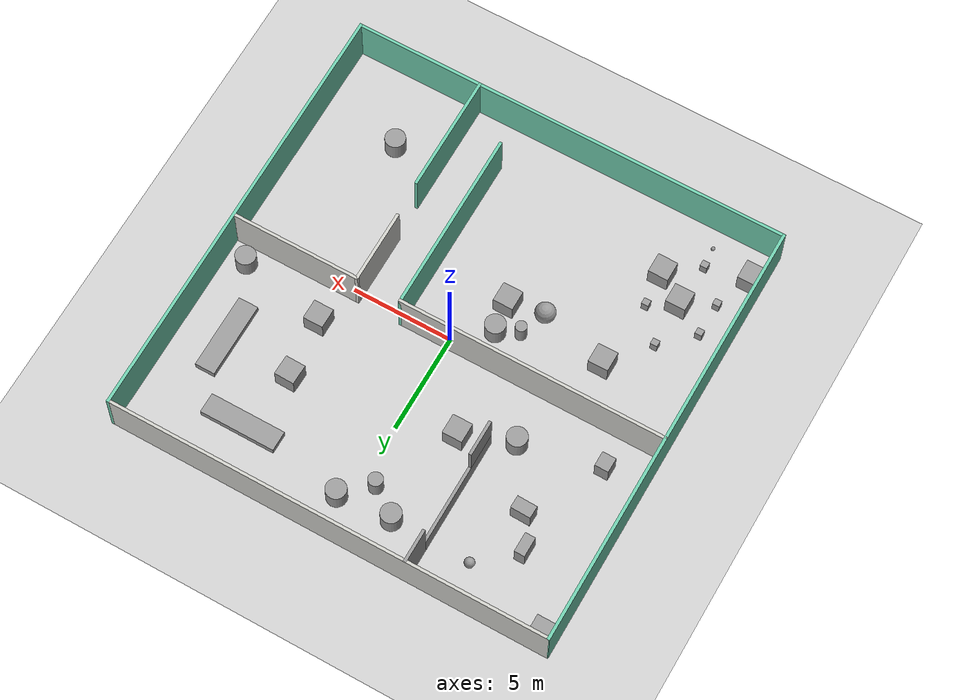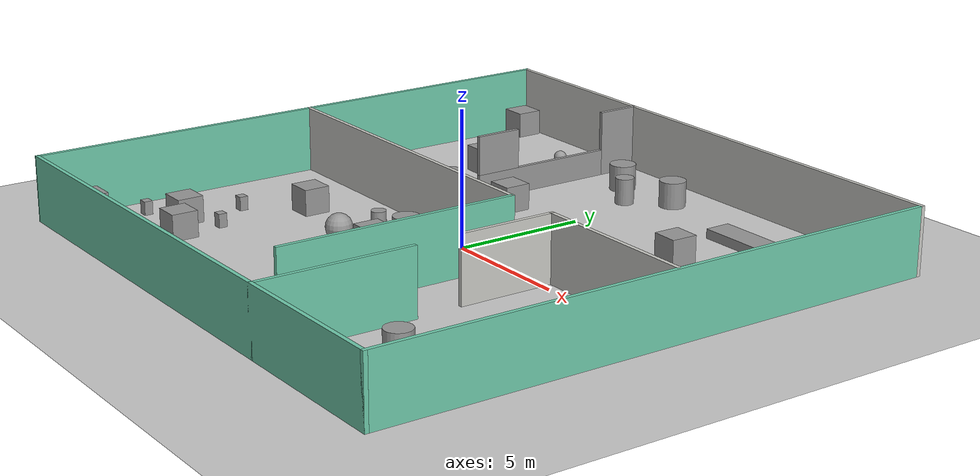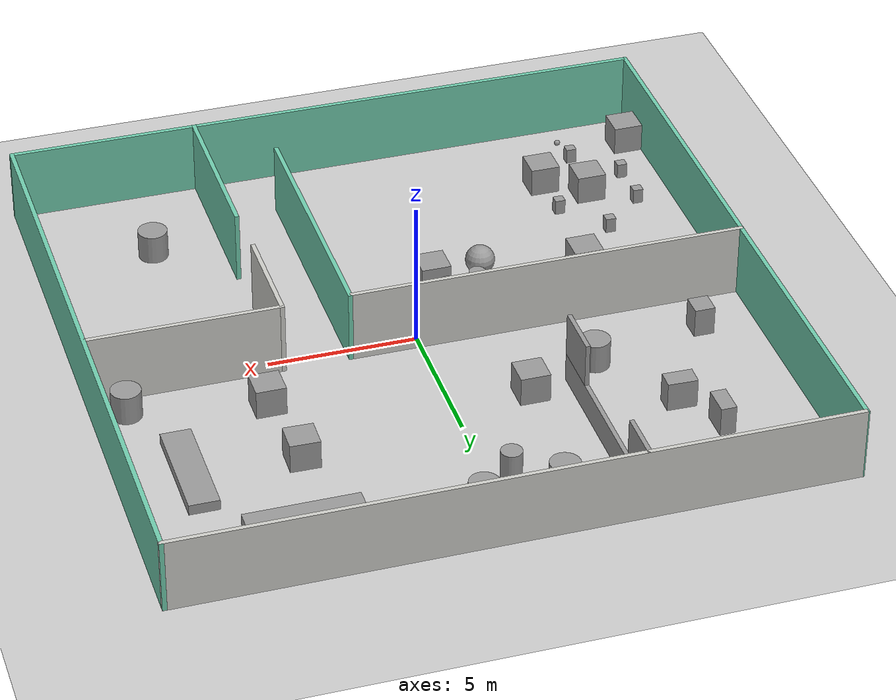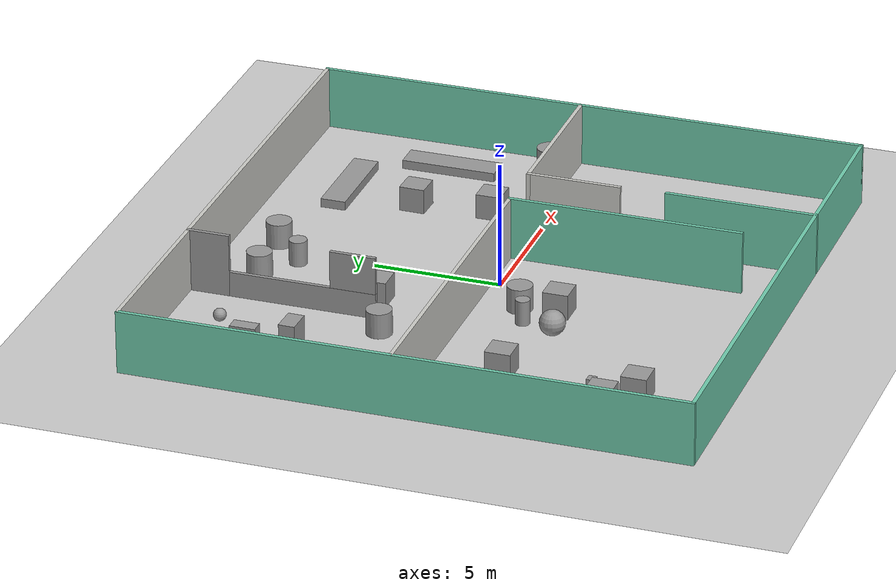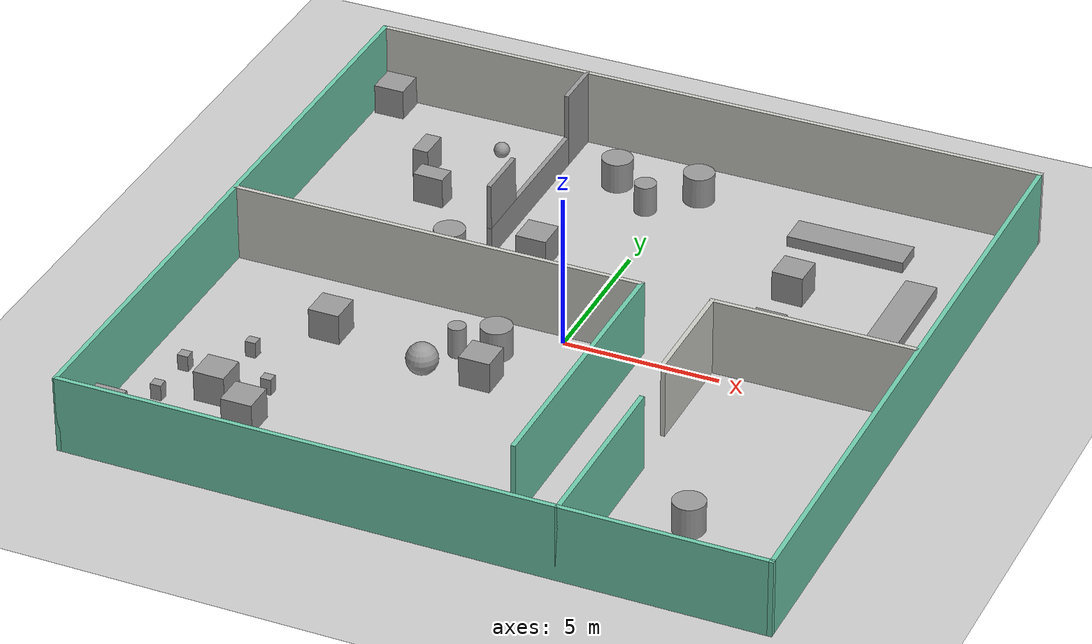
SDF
<sdf version="1.6">
 <world name="default">
  <light name="sun" type="directional">
   <pose>0 0 10 0 -0 0</pose>
   <diffuse>0.8 0.8 0.8 1</diffuse>
   <specular>0.2 0.2 0.2 1</specular>
   <attenuation>
    <range>1000</range>
    <constant>0.9</constant>
    <linear>0.01</linear>
    <quadratic>0.001</quadratic>
   </attenuation>
   <direction>-0.5 0.1 -0.9</direction>
  </light>
  <model name="ground_plane">
   <static>1</static>
   <link name="link">
    <collision name="collision">
     <geometry><plane><normal>0 0 1</normal><size>100 100</size></plane></geometry>
     <surface><friction><ode><mu>100</mu><mu2>50</mu2></ode></friction></surface>
    </collision>
    <visual name="visual">
     <cast_shadows>0</cast_shadows>
     <geometry><plane><normal>0 0 1</normal><size>100 100</size></plane></geometry>
     <material>
      <script><uri>file://media/materials/scripts/gazebo.material</uri><name>Gazebo/Grey</name></script>
     </material>
    </visual>
   </link>
  </model>
  <gravity>0 0 -9.8</gravity>
  <magnetic_field>6e-06 2.3e-05 -4.2e-05</magnetic_field>
  <atmosphere type="adiabatic"/>
  <physics name="default_physics" default="0" type="ode">
   <max_step_size>0.001</max_step_size>
   <real_time_factor>1</real_time_factor>
   <real_time_update_rate>1000</real_time_update_rate>
  </physics>
  <scene><ambient>0.4 0.4 0.4 1</ambient><background>0.7 0.7 0.7 1</background><shadows>1</shadows></scene>
  <spherical_coordinates>
   <surface_model>EARTH_WGS84</surface_model>
   <latitude_deg>0</latitude_deg>
   <longitude_deg>0</longitude_deg>
   <elevation>0</elevation>
   <heading_deg>0</heading_deg>
  </spherical_coordinates>
  <model name="my_ball">
   <link name="link_2">
    <inertial>
     <mass>1</mass>
     <inertia><ixx>0.1</ixx><ixy>0</ixy><ixz>0</ixz><iyy>0.1</iyy><iyz>0</iyz><izz>0.1</izz></inertia>
    </inertial>
    <visual name="visual">
     <geometry><sphere><radius>0.1</radius></sphere></geometry>
     <material>
      <lighting>1</lighting>
      <script><uri>file://media/materials/scripts/gazebo.material</uri><name>Gazebo/Grey</name></script>
      <shader type="pixel"><normal_map>__default__</normal_map></shader>
      <ambient>1 1 1 1</ambient>
      <diffuse>1 1 1 1</diffuse>
      <specular>1 1 1 1</specular>
      <emissive>1 1 1 1</emissive>
     </material>
    </visual>
    <collision name="collision">
     <geometry><sphere><radius>0.1</radius></sphere></geometry>
     <surface>
      <friction>
       <ode><mu>1</mu><mu2>1</mu2><fdir1>0 0 0</fdir1><slip1>0</slip1><slip2>0</slip2></ode>
       <torsional>
        <coefficient>1</coefficient>
        <patch_radius>0</patch_radius>
        <surface_radius>0</surface_radius>
        <use_patch_radius>1</use_patch_radius>
        <ode><slip>0</slip></ode>
       </torsional>
      </friction>
      <bounce><restitution_coefficient>0</restitution_coefficient><threshold>1e+06</threshold></bounce>
      <contact>
       <collide_without_contact>0</collide_without_contact>
       <collide_without_contact_bitmask>1</collide_without_contact_bitmask>
       <collide_bitmask>1</collide_bitmask>
       <ode>
        <soft_cfm>0</soft_cfm>
        <soft_erp>0.2</soft_erp>
        <kp>1e+13</kp>
        <kd>1</kd>
        <max_vel>0.01</max_vel>
        <min_depth>0</min_depth>
       </ode>
       <bullet>
        <split_impulse>1</split_impulse>
        <split_impulse_penetration_threshold>-0.01</split_impulse_penetration_threshold>
        <soft_cfm>0</soft_cfm>
        <soft_erp>0.2</soft_erp>
        <kp>1e+13</kp>
        <kd>1</kd>
       </bullet>
      </contact>
     </surface>
    </collision>
   </link>
   <static>0</static>
   <pose>-8.20078 -9.89485 0.1 -0.82218 0.49932 -2.09569</pose>
  </model>
  <model name="unit_box">
   <pose>5.27996 5.19919 0.499998 0 0 -0.023901</pose>
   <link name="link">
    <inertial>
     <mass>1</mass>
     <inertia>
      <ixx>0.166667</ixx>
      <ixy>0</ixy>
      <ixz>0</ixz>
      <iyy>0.166667</iyy>
      <iyz>0</iyz>
      <izz>0.166667</izz>
     </inertia>
    </inertial>
    <collision name="collision"><geometry><box><size>1 1 0.999996</size></box></geometry></collision>
    <visual name="visual">
     <geometry><box><size>1 1 0.999996</size></box></geometry>
     <material>
      <script><name>Gazebo/Grey</name><uri>file://media/materials/scripts/gazebo.material</uri></script>
     </material>
    </visual>
   </link>
  </model>
  <model name="unit_box_0">
   <pose>5.58133 2.20302 0.5 0 0 -0.00026</pose>
   <link name="link">
    <inertial>
     <mass>1</mass>
     <inertia>
      <ixx>0.166667</ixx>
      <ixy>0</ixy>
      <ixz>0</ixz>
      <iyy>0.166667</iyy>
      <iyz>0</iyz>
      <izz>0.166667</izz>
     </inertia>
    </inertial>
    <collision name="collision"><geometry><box><size>0.999999 1 1</size></box></geometry></collision>
    <visual name="visual">
     <geometry><box><size>0.999999 1 1</size></box></geometry>
     <material>
      <script><name>Gazebo/Grey</name><uri>file://media/materials/scripts/gazebo.material</uri></script>
     </material>
    </visual>
   </link>
  </model>
  <model name="unit_box_0_clone">
   <pose>5.97663 8.18866 0.176883 0 -0.000462 -5.2e-05</pose>
   <link name="link">
    <inertial>
     <mass>1</mass>
     <inertia>
      <ixx>0.166667</ixx>
      <ixy>0</ixy>
      <ixz>0</ixz>
      <iyy>0.166667</iyy>
      <iyz>0</iyz>
      <izz>0.166667</izz>
     </inertia>
    </inertial>
    <collision name="collision"><geometry><box><size>3.77903 1 0.35551</size></box></geometry></collision>
    <visual name="visual">
     <geometry><box><size>3.77903 1 0.35551</size></box></geometry>
     <material>
      <script><name>Gazebo/Grey</name><uri>file://media/materials/scripts/gazebo.material</uri></script>
     </material>
    </visual>
   </link>
  </model>
  <model name="unit_box_0_clone_0">
   <pose>8.7896 4.94214 0.176883 0 -0.000462 1.57073</pose>
   <link name="link">
    <inertial>
     <mass>1</mass>
     <inertia>
      <ixx>0.166667</ixx>
      <ixy>0</ixy>
      <ixz>0</ixz>
      <iyy>0.166667</iyy>
      <iyz>0</iyz>
      <izz>0.166667</izz>
     </inertia>
    </inertial>
    <collision name="collision"><geometry><box><size>3.77903 1 0.35551</size></box></geometry></collision>
    <visual name="visual">
     <geometry><box><size>3.77903 1 0.35551</size></box></geometry>
     <material>
      <script><name>Gazebo/Grey</name><uri>file://media/materials/scripts/gazebo.material</uri></script>
     </material>
    </visual>
   </link>
  </model>
  <model name="unit_box_3">
   <pose>-10.3737 10.2501 0.499995 0 1e-05 0</pose>
   <link name="link">
    <inertial>
     <mass>1</mass>
     <inertia>
      <ixx>0.166667</ixx>
      <ixy>0</ixy>
      <ixz>0</ixz>
      <iyy>0.166667</iyy>
      <iyz>0</iyz>
      <izz>0.166667</izz>
     </inertia>
    </inertial>
    <collision name="collision"><geometry><box><size>1 1 1</size></box></geometry></collision>
    <visual name="visual">
     <geometry><box><size>1 1 1</size></box></geometry>
     <material>
      <script><name>Gazebo/Grey</name><uri>file://media/materials/scripts/gazebo.material</uri></script>
     </material>
    </visual>
   </link>
  </model>
  <model name="unit_box_4">
   <pose>-6.96954 5.74142 0.499998 8e-06 0 -0.026281</pose>
   <link name="link">
    <inertial>
     <mass>1</mass>
     <inertia>
      <ixx>0.166667</ixx>
      <ixy>0</ixy>
      <ixz>0</ixz>
      <iyy>0.166667</iyy>
      <iyz>0</iyz>
      <izz>0.166667</izz>
     </inertia>
    </inertial>
    <collision name="collision"><geometry><box><size>1 0.633575 1</size></box></geometry></collision>
    <visual name="visual">
     <geometry><box><size>1 0.633575 1</size></box></geometry>
     <material>
      <script><name>Gazebo/Grey</name><uri>file://media/materials/scripts/gazebo.material</uri></script>
     </material>
    </visual>
   </link>
  </model>
  <model name="unit_box_5">
   <pose>-9.05696 2.11771 0.5 0 0 -0.000744</pose>
   <link name="link">
    <inertial>
     <mass>1</mass>
     <inertia>
      <ixx>0.166667</ixx>
      <ixy>0</ixy>
      <ixz>0</ixz>
      <iyy>0.166667</iyy>
      <iyz>0</iyz>
      <izz>0.166667</izz>
     </inertia>
    </inertial>
    <collision name="collision"><geometry><box><size>0.686738 0.74213 1</size></box></geometry></collision>
    <visual name="visual">
     <geometry><box><size>0.686738 0.74213 1</size></box></geometry>
     <material>
      <script><name>Gazebo/Grey</name><uri>file://media/materials/scripts/gazebo.material</uri></script>
     </material>
    </visual>
   </link>
  </model>
  <model name="unit_box_6">
   <pose>-10.4506 -9.261 0.499995 0 -1e-05 -1.6e-05</pose>
   <link name="link">
    <inertial>
     <mass>1</mass>
     <inertia>
      <ixx>0.166667</ixx>
      <ixy>0</ixy>
      <ixz>0</ixz>
      <iyy>0.166667</iyy>
      <iyz>0</iyz>
      <izz>0.166667</izz>
     </inertia>
    </inertial>
    <collision name="collision"><geometry><box><size>1 0.999995 0.999999</size></box></geometry></collision>
    <visual name="visual">
     <geometry><box><size>1 0.999995 0.999999</size></box></geometry>
     <material>
      <script><name>Gazebo/Grey</name><uri>file://media/materials/scripts/gazebo.material</uri></script>
     </material>
    </visual>
   </link>
  </model>
  <model name="unit_cylinder">
   <pose>-2.07272 8.86246 0.499992 -3e-06 -4e-06 -0</pose>
   <link name="link">
    <inertial>
     <mass>1</mass>
     <inertia><ixx>0.145833</ixx><ixy>0</ixy><ixz>0</ixz><iyy>0.145833</iyy><iyz>0</iyz><izz>0.125</izz></inertia>
    </inertial>
    <collision name="collision">
     <geometry><cylinder><radius>0.5</radius><length>1</length></cylinder></geometry>
    </collision>
    <visual name="visual">
     <geometry><cylinder><radius>0.5</radius><length>1</length></cylinder></geometry>
     <material>
      <script><name>Gazebo/Grey</name><uri>file://media/materials/scripts/gazebo.material</uri></script>
     </material>
    </visual>
   </link>
  </model>
  <model name="unit_cylinder_0">
   <pose>-0.686957 7.82905 0.499996 3e-06 3e-06 0</pose>
   <link name="link">
    <inertial>
     <mass>1</mass>
     <inertia><ixx>0.145833</ixx><ixy>0</ixy><ixz>0</ixz><iyy>0.145833</iyy><iyz>0</iyz><izz>0.125</izz></inertia>
    </inertial>
    <collision name="collision">
     <geometry><cylinder><radius>0.352637</radius><length>1</length></cylinder></geometry>
    </collision>
    <visual name="visual">
     <geometry><cylinder><radius>0.352637</radius><length>1</length></cylinder></geometry>
     <material>
      <script><name>Gazebo/Grey</name><uri>file://media/materials/scripts/gazebo.material</uri></script>
     </material>
    </visual>
   </link>
  </model>
  <model name="unit_cylinder_1">
   <pose>0.589749 9.07608 0.499992 -3e-06 -4e-06 -0</pose>
   <link name="link">
    <inertial>
     <mass>1</mass>
     <inertia><ixx>0.145833</ixx><ixy>0</ixy><ixz>0</ixz><iyy>0.145833</iyy><iyz>0</iyz><izz>0.125</izz></inertia>
    </inertial>
    <collision name="collision">
     <geometry><cylinder><radius>0.5</radius><length>1</length></cylinder></geometry>
    </collision>
    <visual name="visual">
     <geometry><cylinder><radius>0.5</radius><length>1</length></cylinder></geometry>
     <material>
      <script><name>Gazebo/Grey</name><uri>file://media/materials/scripts/gazebo.material</uri></script>
     </material>
    </visual>
   </link>
  </model>
  <model name="unit_box_8">
   <pose>-6.79453 -7.53861 0.500001 0 0 -1.4e-05</pose>
   <link name="link">
    <inertial>
     <mass>1</mass>
     <inertia>
      <ixx>0.166667</ixx>
      <ixy>0</ixy>
      <ixz>0</ixz>
      <iyy>0.166667</iyy>
      <iyz>0</iyz>
      <izz>0.166667</izz>
     </inertia>
    </inertial>
    <collision name="collision"><geometry><box><size>1 1 1</size></box></geometry></collision>
    <visual name="visual">
     <geometry><box><size>1 1 1</size></box></geometry>
     <material>
      <script><name>Gazebo/Grey</name><uri>file://media/materials/scripts/gazebo.material</uri></script>
     </material>
    </visual>
   </link>
  </model>
  <model name="unit_box_9">
   <pose>-6.5597 -2.26911 0.499995 1e-05 -0 0</pose>
   <link name="link">
    <inertial>
     <mass>1</mass>
     <inertia>
      <ixx>0.166667</ixx>
      <ixy>0</ixy>
      <ixz>0</ixz>
      <iyy>0.166667</iyy>
      <iyz>0</iyz>
      <izz>0.166667</izz>
     </inertia>
    </inertial>
    <collision name="collision"><geometry><box><size>1 1 1</size></box></geometry></collision>
    <visual name="visual">
     <geometry><box><size>1 1 1</size></box></geometry>
     <material>
      <script><name>Gazebo/Grey</name><uri>file://media/materials/scripts/gazebo.material</uri></script>
     </material>
    </visual>
   </link>
  </model>
  <model name="unit_box_10">
   <pose>-8.16633 -6.60489 0.5 0 -0 0</pose>
   <link name="link">
    <inertial>
     <mass>1</mass>
     <inertia>
      <ixx>0.166667</ixx>
      <ixy>0</ixy>
      <ixz>0</ixz>
      <iyy>0.166667</iyy>
      <iyz>0</iyz>
      <izz>0.166667</izz>
     </inertia>
    </inertial>
    <collision name="collision"><geometry><box><size>1 0.999999 1</size></box></geometry></collision>
    <visual name="visual">
     <geometry><box><size>1 0.999999 1</size></box></geometry>
     <material>
      <script><name>Gazebo/Grey</name><uri>file://media/materials/scripts/gazebo.material</uri></script>
     </material>
    </visual>
   </link>
  </model>
  <model name="unit_box_8_clone">
   <pose>-9.67088 -5.71166 0.262147 0 -0 0</pose>
   <link name="link">
    <inertial>
     <mass>1</mass>
     <inertia>
      <ixx>0.166667</ixx>
      <ixy>0</ixy>
      <ixz>0</ixz>
      <iyy>0.166667</iyy>
      <iyz>0</iyz>
      <izz>0.166667</izz>
     </inertia>
    </inertial>
    <collision name="collision">
     <geometry><box><size>0.346513 0.318947 0.524294</size></box></geometry>
    </collision>
    <visual name="visual">
     <geometry><box><size>0.346513 0.318947 0.524294</size></box></geometry>
     <material>
      <script><name>Gazebo/Grey</name><uri>file://media/materials/scripts/gazebo.material</uri></script>
     </material>
    </visual>
   </link>
  </model>
  <model name="unit_box_8_clone_0">
   <pose>-6.87918 -5.83103 0.262147 0 -0 0</pose>
   <link name="link">
    <inertial>
     <mass>1</mass>
     <inertia>
      <ixx>0.166667</ixx>
      <ixy>0</ixy>
      <ixz>0</ixz>
      <iyy>0.166667</iyy>
      <iyz>0</iyz>
      <izz>0.166667</izz>
     </inertia>
    </inertial>
    <collision name="collision">
     <geometry><box><size>0.346513 0.318947 0.524294</size></box></geometry>
    </collision>
    <visual name="visual">
     <geometry><box><size>0.346513 0.318947 0.524294</size></box></geometry>
     <material>
      <script><name>Gazebo/Grey</name><uri>file://media/materials/scripts/gazebo.material</uri></script>
     </material>
    </visual>
   </link>
  </model>
  <model name="unit_box_8_clone_1">
   <pose>-9.68698 -7.39606 0.262147 0 -0 0</pose>
   <link name="link">
    <inertial>
     <mass>1</mass>
     <inertia>
      <ixx>0.166667</ixx>
      <ixy>0</ixy>
      <ixz>0</ixz>
      <iyy>0.166667</iyy>
      <iyz>0</iyz>
      <izz>0.166667</izz>
     </inertia>
    </inertial>
    <collision name="collision">
     <geometry><box><size>0.346513 0.318947 0.524294</size></box></geometry>
    </collision>
    <visual name="visual">
     <geometry><box><size>0.346513 0.318947 0.524294</size></box></geometry>
     <material>
      <script><name>Gazebo/Grey</name><uri>file://media/materials/scripts/gazebo.material</uri></script>
     </material>
    </visual>
   </link>
  </model>
  <model name="unit_box_8_clone_2">
   <pose>-8.30613 -8.82299 0.262147 0 -0 0</pose>
   <link name="link">
    <inertial>
     <mass>1</mass>
     <inertia>
      <ixx>0.166667</ixx>
      <ixy>0</ixy>
      <ixz>0</ixz>
      <iyy>0.166667</iyy>
      <iyz>0</iyz>
      <izz>0.166667</izz>
     </inertia>
    </inertial>
    <collision name="collision">
     <geometry><box><size>0.346513 0.318947 0.524294</size></box></geometry>
    </collision>
    <visual name="visual">
     <geometry><box><size>0.346513 0.318947 0.524294</size></box></geometry>
     <material>
      <script><name>Gazebo/Grey</name><uri>file://media/materials/scripts/gazebo.material</uri></script>
     </material>
    </visual>
   </link>
  </model>
  <model name="unit_box_8_clone_3">
   <pose>-8.16799 -4.26601 0.262147 0 -0 0</pose>
   <link name="link">
    <inertial>
     <mass>1</mass>
     <inertia>
      <ixx>0.166667</ixx>
      <ixy>0</ixy>
      <ixz>0</ixz>
      <iyy>0.166667</iyy>
      <iyz>0</iyz>
      <izz>0.166667</izz>
     </inertia>
    </inertial>
    <collision name="collision">
     <geometry><box><size>0.346513 0.318947 0.524294</size></box></geometry>
    </collision>
    <visual name="visual">
     <geometry><box><size>0.346513 0.318947 0.524294</size></box></geometry>
     <material>
      <script><name>Gazebo/Grey</name><uri>file://media/materials/scripts/gazebo.material</uri></script>
     </material>
    </visual>
   </link>
  </model>
  <model name="unit_box_12">
   <pose>-2.60925 3.94947 0.499995 0 1e-05 0</pose>
   <link name="link">
    <inertial>
     <mass>1</mass>
     <inertia>
      <ixx>0.166667</ixx>
      <ixy>0</ixy>
      <ixz>0</ixz>
      <iyy>0.166667</iyy>
      <iyz>0</iyz>
      <izz>0.166667</izz>
     </inertia>
    </inertial>
    <collision name="collision"><geometry><box><size>1 1 1</size></box></geometry></collision>
    <visual name="visual">
     <geometry><box><size>1 1 1</size></box></geometry>
     <material>
      <script><name>Gazebo/Grey</name><uri>file://media/materials/scripts/gazebo.material</uri></script>
     </material>
    </visual>
   </link>
  </model>
  <model name="mybulding2">
   <link name="Wall_12">
    <collision name="Wall_12_Collision">
     <geometry><box><size>22.1614 0.15 2.5</size></box></geometry>
     <pose>0 0 1.25 0 -0 0</pose>
    </collision>
    <visual name="Wall_12_Visual">
     <pose>0 0 1.25 0 -0 0</pose>
     <geometry><box><size>22.1614 0.15 2.5</size></box></geometry>
     <material>
      <script><uri>file://media/materials/scripts/gazebo.material</uri><name>Gazebo/CeilingTiled</name></script>
      <ambient>1 1 1 1</ambient>
     </material>
     <meta><layer>0</layer></meta>
    </visual>
    <pose>0.022152 10.925 0 0 -0 3.14159</pose>
   </link>
   <link name="Wall_13">
    <collision name="Wall_13_Collision">
     <geometry><box><size>22 0.15 2.5</size></box></geometry>
     <pose>0 0 1.25 0 -0 0</pose>
    </collision>
    <visual name="Wall_13_Visual">
     <pose>0 0 1.25 0 -0 0</pose>
     <geometry><box><size>22 0.15 2.5</size></box></geometry>
     <material>
      <script><uri>file://media/materials/scripts/gazebo.material</uri><name>Gazebo/Grey</name></script>
      <ambient>0.435294 0.796078 0.67451 1</ambient>
     </material>
     <meta><layer>0</layer></meta>
    </visual>
    <pose>-11.0278 0 0 0 0 -1.5708</pose>
   </link>
   <link name="Wall_15">
    <collision name="Wall_15_Collision">
     <geometry><box><size>22.1614 0.15 2.5</size></box></geometry>
     <pose>0 0 1.25 0 -0 0</pose>
    </collision>
    <visual name="Wall_15_Visual">
     <pose>0 0 1.25 0 -0 0</pose>
     <geometry><box><size>22.1614 0.15 2.5</size></box></geometry>
     <material>
      <script><uri>file://media/materials/scripts/gazebo.material</uri><name>Gazebo/Grey</name></script>
      <ambient>0.435294 0.796078 0.67451 1</ambient>
     </material>
     <meta><layer>0</layer></meta>
    </visual>
    <pose>0.022152 -10.925 0 0 -0 0</pose>
   </link>
   <link name="Wall_16">
    <collision name="Wall_16_Collision">
     <geometry><box><size>22 0.15 2.5</size></box></geometry>
     <pose>0 0 1.25 0 -0 0</pose>
    </collision>
    <visual name="Wall_16_Visual">
     <pose>0 0 1.25 0 -0 0</pose>
     <geometry><box><size>22 0.15 2.5</size></box></geometry>
     <material>
      <script><uri>file://media/materials/scripts/gazebo.material</uri><name>Gazebo/Grey</name></script>
      <ambient>0.435294 0.796078 0.67451 1</ambient>
     </material>
     <meta><layer>0</layer></meta>
    </visual>
    <pose>11.0278 0 0 0 -0 1.5708</pose>
   </link>
   <link name="Wall_18">
    <collision name="Wall_18_Collision">
     <geometry><box><size>13.5 0.15 2.5</size></box></geometry>
     <pose>0 0 1.25 0 -0 0</pose>
    </collision>
    <visual name="Wall_18_Visual">
     <pose>0 0 1.25 0 -0 0</pose>
     <geometry><box><size>13.5 0.15 2.5</size></box></geometry>
     <material>
      <script><uri>file://media/materials/scripts/gazebo.material</uri><name>Gazebo/CeilingTiled</name></script>
      <ambient>1 1 1 1</ambient>
     </material>
     <meta><layer>0</layer></meta>
    </visual>
    <pose>-4.33745 0.401695 0 0 -0 0</pose>
   </link>
   <link name="Wall_19">
    <collision name="Wall_19_Collision">
     <geometry><box><size>9.25 0.15 2.5</size></box></geometry>
     <pose>0 0 1.25 0 -0 0</pose>
    </collision>
    <visual name="Wall_19_Visual">
     <pose>0 0 1.25 0 -0 0</pose>
     <geometry><box><size>9.25 0.15 2.5</size></box></geometry>
     <material>
      <script><uri>file://media/materials/scripts/gazebo.material</uri><name>Gazebo/Grey</name></script>
      <ambient>0.435294 0.796078 0.67451 1</ambient>
     </material>
     <meta><layer>0</layer></meta>
    </visual>
    <pose>2.33755 -4.1483 0 0 0 -1.5708</pose>
   </link>
   <link name="Wall_21">
    <collision name="Wall_21_Collision">
     <geometry><box><size>6.5 0.15 2.5</size></box></geometry>
     <pose>0 0 1.25 0 -0 0</pose>
    </collision>
    <visual name="Wall_21_Visual">
     <pose>0 0 1.25 0 -0 0</pose>
     <geometry><box><size>6.5 0.15 2.5</size></box></geometry>
     <material>
      <script><uri>file://media/materials/scripts/gazebo.material</uri><name>Gazebo/CeilingTiled</name></script>
      <ambient>1 1 1 1</ambient>
     </material>
     <meta><layer>0</layer></meta>
    </visual>
    <pose>7.75753 0.401695 0 0 -0 0</pose>
   </link>
   <link name="Wall_23">
    <collision name="Wall_23_Collision">
     <geometry><box><size>3.75 0.15 2.5</size></box></geometry>
     <pose>0 0 1.25 0 -0 0</pose>
    </collision>
    <visual name="Wall_23_Visual">
     <pose>0 0 1.25 0 -0 0</pose>
     <geometry><box><size>3.75 0.15 2.5</size></box></geometry>
     <material>
      <script><uri>file://media/materials/scripts/gazebo.material</uri><name>Gazebo/CeilingTiled</name></script>
      <ambient>1 1 1 1</ambient>
     </material>
     <meta><layer>0</layer></meta>
    </visual>
    <pose>4.58253 -1.3983 0 0 0 -1.5708</pose>
   </link>
   <link name="Wall_25">
    <collision name="Wall_25_Collision">
     <geometry><box><size>5.983 0.15 2.5</size></box></geometry>
     <pose>0 0 1.25 0 -0 0</pose>
    </collision>
    <visual name="Wall_25_Visual">
     <pose>0 0 1.25 0 -0 0</pose>
     <geometry><box><size>5.983 0.15 2.5</size></box></geometry>
     <material>
      <script><uri>file://media/materials/scripts/gazebo.material</uri><name>Gazebo/Grey</name></script>
      <ambient>0.435294 0.796078 0.67451 1</ambient>
     </material>
     <meta><layer>0</layer></meta>
    </visual>
    <pose>4.67085 -8.0085 0 0 0 -1.5708</pose>
   </link>
   <link name="Wall_27">
    <pose>-4.00417 7.24214 0 0 0 -1.5708</pose>
    <visual name="Wall_27_Visual_0">
     <pose>-2.90434 0 1.25 0 -0 0</pose>
     <geometry><box><size>1.69133 0.15 2.5</size></box></geometry>
     <material>
      <script><uri>file://media/materials/scripts/gazebo.material</uri><name>Gazebo/Grey</name></script>
      <ambient>1 1 1 1</ambient>
     </material>
     <meta><layer>0</layer></meta>
    </visual>
    <collision name="Wall_27_Collision_0">
     <geometry><box><size>1.69133 0.15 2.5</size></box></geometry>
     <pose>-2.90434 0 1.25 0 -0 0</pose>
    </collision>
    <visual name="Wall_27_Visual_1">
     <pose>0.845665 0 0.5 0 -0 0</pose>
     <geometry><box><size>5.80867 0.15 1</size></box></geometry>
     <material>
      <script><uri>file://media/materials/scripts/gazebo.material</uri><name>Gazebo/Grey</name></script>
      <ambient>1 1 1 1</ambient>
     </material>
     <meta><layer>0</layer></meta>
    </visual>
    <collision name="Wall_27_Collision_1">
     <geometry><box><size>5.80867 0.15 1</size></box></geometry>
     <pose>0.845665 0 0.5 0 -0 0</pose>
    </collision>
    <visual name="Wall_27_Visual_2">
     <pose>2.84566 0 1.75 0 -0 0</pose>
     <geometry><box><size>1.80867 0.15 1.5</size></box></geometry>
     <material>
      <script><uri>file://media/materials/scripts/gazebo.material</uri><name>Gazebo/Grey</name></script>
      <ambient>1 1 1 1</ambient>
     </material>
     <meta><layer>0</layer></meta>
    </visual>
    <collision name="Wall_27_Collision_2">
     <geometry><box><size>1.80867 0.15 1.5</size></box></geometry>
     <pose>2.84566 0 1.75 0 -0 0</pose>
    </collision>
   </link>
   <static>1</static>
  </model>
  <model name="unit_cylinder_0_clone">
   <pose>7.07208 -7.24869 0.499998 3e-06 4e-06 -0</pose>
   <link name="link">
    <inertial>
     <mass>1</mass>
     <inertia><ixx>0.145833</ixx><ixy>0</ixy><ixz>0</ixz><iyy>0.145833</iyy><iyz>0</iyz><izz>0.125</izz></inertia>
    </inertial>
    <collision name="collision">
     <geometry><cylinder><radius>0.5</radius><length>1</length></cylinder></geometry>
    </collision>
    <visual name="visual">
     <geometry><cylinder><radius>0.5</radius><length>1</length></cylinder></geometry>
     <material>
      <script><name>Gazebo/Grey</name><uri>file://media/materials/scripts/gazebo.material</uri></script>
     </material>
    </visual>
   </link>
  </model>
  <model name="unit_cylinder_2">
   <pose>-2.64624 -1.77955 0.499998 0 -0 0</pose>
   <link name="link">
    <inertial>
     <mass>1</mass>
     <inertia><ixx>0.145833</ixx><ixy>0</ixy><ixz>0</ixz><iyy>0.145833</iyy><iyz>0</iyz><izz>0.125</izz></inertia>
    </inertial>
    <collision name="collision">
     <geometry><cylinder><radius>0.278338</radius><length>1</length></cylinder></geometry>
    </collision>
    <visual name="visual">
     <geometry><cylinder><radius>0.278338</radius><length>1</length></cylinder></geometry>
     <material>
      <script><name>Gazebo/Grey</name><uri>file://media/materials/scripts/gazebo.material</uri></script>
     </material>
    </visual>
   </link>
  </model>
  <model name="unit_cylinder_3">
   <pose>-1.58018 -1.30719 0.499998 3e-06 -2e-06 0</pose>
   <link name="link">
    <inertial>
     <mass>1</mass>
     <inertia><ixx>0.145833</ixx><ixy>0</ixy><ixz>0</ixz><iyy>0.145833</iyy><iyz>0</iyz><izz>0.125</izz></inertia>
    </inertial>
    <collision name="collision">
     <geometry><cylinder><radius>0.5</radius><length>1</length></cylinder></geometry>
    </collision>
    <visual name="visual">
     <geometry><cylinder><radius>0.5</radius><length>1</length></cylinder></geometry>
     <material>
      <script><name>Gazebo/Grey</name><uri>file://media/materials/scripts/gazebo.material</uri></script>
     </material>
    </visual>
   </link>
  </model>
  <model name="unit_box_1">
   <pose>-1.40171 -2.79292 0.499995 1e-05 -0 0</pose>
   <link name="link">
    <inertial>
     <mass>1</mass>
     <inertia>
      <ixx>0.166667</ixx>
      <ixy>0</ixy>
      <ixz>0</ixz>
      <iyy>0.166667</iyy>
      <iyz>0</iyz>
      <izz>0.166667</izz>
     </inertia>
    </inertial>
    <collision name="collision"><geometry><box><size>1 1 1</size></box></geometry></collision>
    <visual name="visual">
     <geometry><box><size>1 1 1</size></box></geometry>
     <material>
      <script><name>Gazebo/Grey</name><uri>file://media/materials/scripts/gazebo.material</uri></script>
     </material>
    </visual>
   </link>
  </model>
  <model name="unit_sphere">
   <pose>-3.16527 -3.10981 0.5 0 -0 0</pose>
   <link name="link">
    <inertial>
     <mass>1</mass>
     <inertia><ixx>0.1</ixx><ixy>0</ixy><ixz>0</ixz><iyy>0.1</iyy><iyz>0</iyz><izz>0.1</izz></inertia>
    </inertial>
    <collision name="collision"><geometry><sphere><radius>0.5</radius></sphere></geometry></collision>
    <visual name="visual">
     <geometry><sphere><radius>0.5</radius></sphere></geometry>
     <material>
      <script><name>Gazebo/Grey</name><uri>file://media/materials/scripts/gazebo.material</uri></script>
     </material>
    </visual>
   </link>
  </model>
  <model name="unit_cylinder_4">
   <pose>-5.10027 2.98985 0.499997 3e-06 -2e-06 0</pose>
   <link name="link">
    <inertial>
     <mass>1</mass>
     <inertia><ixx>0.145833</ixx><ixy>0</ixy><ixz>0</ixz><iyy>0.145833</iyy><iyz>0</iyz><izz>0.125</izz></inertia>
    </inertial>
    <collision name="collision">
     <geometry><cylinder><radius>0.5</radius><length>1</length></cylinder></geometry>
    </collision>
    <visual name="visual">
     <geometry><cylinder><radius>0.5</radius><length>1</length></cylinder></geometry>
     <material>
      <script><name>Gazebo/Grey</name><uri>file://media/materials/scripts/gazebo.material</uri></script>
     </material>
    </visual>
   </link>
  </model>
  <model name="unit_box_7">
   <pose>-7.85676 7.2443 0.5 0 -0 0</pose>
   <link name="link">
    <inertial>
     <mass>1</mass>
     <inertia>
      <ixx>0.166667</ixx>
      <ixy>0</ixy>
      <ixz>0</ixz>
      <iyy>0.166667</iyy>
      <iyz>0</iyz>
      <izz>0.166667</izz>
     </inertia>
    </inertial>
    <collision name="collision"><geometry><box><size>0.520539 1 1</size></box></geometry></collision>
    <visual name="visual">
     <geometry><box><size>0.520539 1 1</size></box></geometry>
     <material>
      <script><name>Gazebo/Grey</name><uri>file://media/materials/scripts/gazebo.material</uri></script>
     </material>
    </visual>
   </link>
  </model>
  <model name="unit_sphere_0">
   <pose>-6.05369 8.92735 0.251599 0 -0 0</pose>
   <link name="link">
    <inertial>
     <mass>1</mass>
     <inertia><ixx>0.1</ixx><ixy>0</ixy><ixz>0</ixz><iyy>0.1</iyy><iyz>0</iyz><izz>0.1</izz></inertia>
    </inertial>
    <collision name="collision"><geometry><sphere><radius>0.251599</radius></sphere></geometry></collision>
    <visual name="visual">
     <geometry><sphere><radius>0.251599</radius></sphere></geometry>
     <material>
      <script><name>Gazebo/Grey</name><uri>file://media/materials/scripts/gazebo.material</uri></script>
     </material>
    </visual>
   </link>
  </model>
  <model name="unit_cylinder_5">
   <pose>9.95337 1.329 0.499993 -3e-06 -4e-06 -0</pose>
   <link name="link">
    <inertial>
     <mass>1</mass>
     <inertia><ixx>0.145833</ixx><ixy>0</ixy><ixz>0</ixz><iyy>0.145833</iyy><iyz>0</iyz><izz>0.125</izz></inertia>
    </inertial>
    <collision name="collision">
     <geometry><cylinder><radius>0.5</radius><length>1</length></cylinder></geometry>
    </collision>
    <visual name="visual">
     <geometry><cylinder><radius>0.5</radius><length>1</length></cylinder></geometry>
     <material>
      <script><name>Gazebo/Grey</name><uri>file://media/materials/scripts/gazebo.material</uri></script>
     </material>
    </visual>
   </link>
  </model>
 </world>
</sdf>
